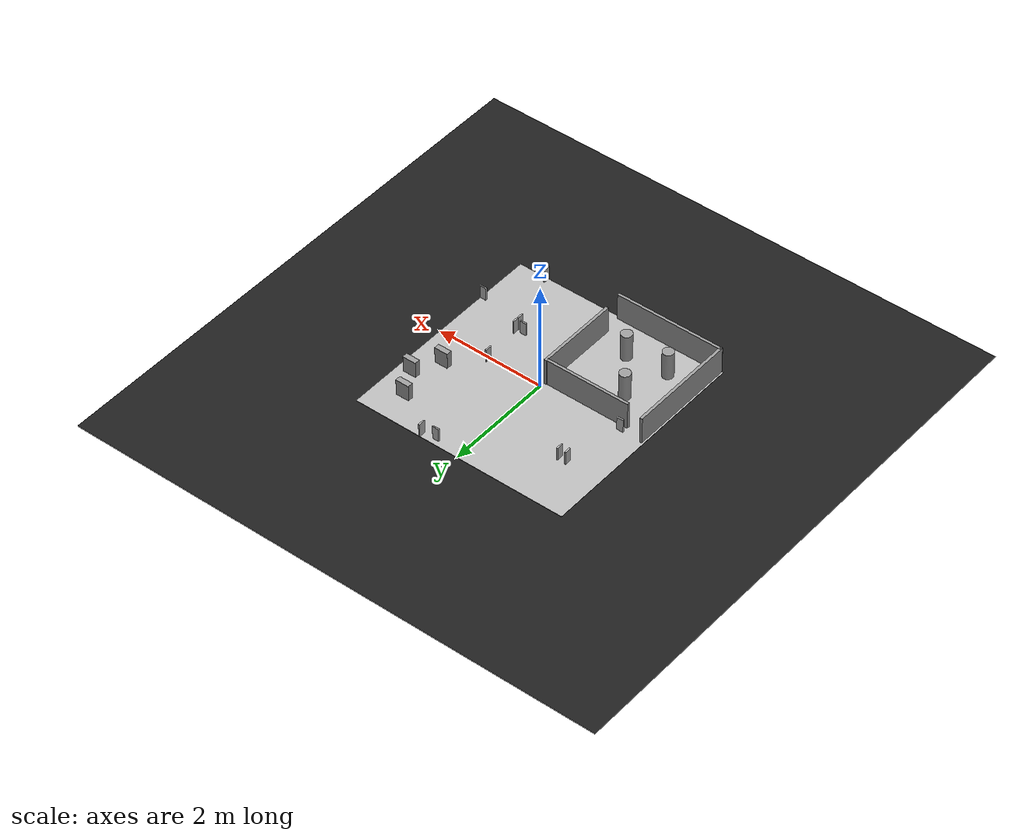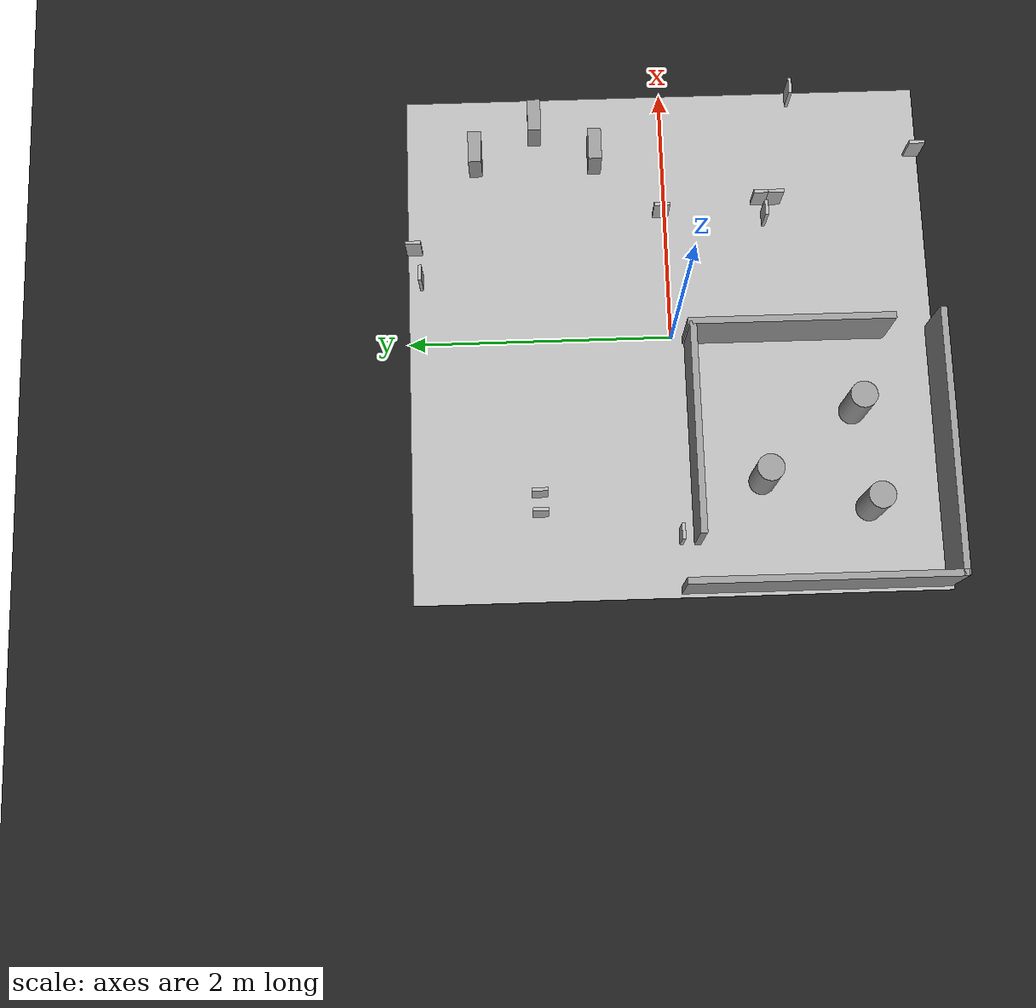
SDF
<sdf version="1.6">
 <world name="default">
  <scene>
   <ambient>0 0 0 1</ambient>
   <shadows>0</shadows>
   <grid>0</grid>
   <background>0.7 0.7 0.7 1</background>
  </scene>
  <include><uri>model://turtlebot3_autorace_2020/course</uri><pose>0 0 0 0 0 -3.14</pose></include>
  <include>
   <uri>model://turtlebot3_autorace_2020/traffic_light</uri>
   <pose>1.45 -1.95 0.125 0 -0 -1.57</pose>
  </include>
  <include>
   <uri>model://turtlebot3_autorace_2020/traffic_parking</uri>
   <pose>0.74 1.95 0.13 0 0 -1.57</pose>
  </include>
  <include>
   <uri>model://turtlebot3_autorace_2020/traffic_tunnel</uri>
   <pose>-1.544 0.00 0.125 0 0 0</pose>
  </include>
  <include>
   <uri>model://turtlebot3_autorace_2020/traffic_stop</uri>
   <pose>-1.35 1.04 0.125 0 -0 -1.57</pose>
  </include>
  <include>
   <uri>model://turtlebot3_autorace_2020/traffic_left</uri>
   <pose>1.08 -0.838 0.125 0 -0 -1.57</pose>
  </include>
  <include>
   <uri>model://turtlebot3_autorace_2020/traffic_pl_left</uri>
   <pose>0.50 1.90 0.13 0 0 0</pose>
  </include>
  <include>
   <uri>model://turtlebot3_autorace_2020/traffic_right</uri>
   <pose>1.08 -0.728 0.125 0 -0 -1.57</pose>
  </include>
  <include>
   <uri>model://turtlebot3_autorace_2020/traffic_construction</uri>
   <pose>1.0 0.04 0.125 0 -0 -1.57</pose>
  </include>
  <include>
   <uri>model://turtlebot3_autorace_2020/traffic_intersection</uri>
   <pose>1.95 -1.0 0.125 0 -0 0.0</pose>
  </include>
  <include>
   <uri>model://turtlebot3_autorace_2020/traffic_noentry</uri>
   <pose>0.95 -0.758 0.125 0 -0 0.0</pose>
  </include>
  <include>
   <uri>model://turtlebot3_autorace_2020/traffic_bar</uri>
   <pose>-1.20 1.04 0.125 0 -0 -1.57</pose>
  </include>
  <light name="sun" type="directional">
   <pose>0 0 10 0 -0 0</pose>
   <diffuse>0.8 0.8 0.8 1</diffuse>
   <specular>0.1 0.1 0.1 1</specular>
   <attenuation>
    <range>1000</range>
    <constant>0.9</constant>
    <linear>0.01</linear>
    <quadratic>0.001</quadratic>
   </attenuation>
   <direction>-0.5 0.5 -1</direction>
  </light>
  <model name="ground2">
   <pose>0 0 -0.1 0 -0 0</pose>
   <static>1</static>
   <link name="ground">
    <collision name="ground_coll"><geometry><box><size>8 8 0.01</size></box></geometry></collision>
    <visual name="ground_vis">
     <geometry><box><size>10 10 0.01</size></box></geometry>
     <material>
      <script><uri>file://media/materials/scripts/gazebo.material</uri><name>Gazebo/FlatBlack</name></script>
     </material>
    </visual>
   </link>
  </model>
  <gravity>0 0 -9.8</gravity>
  <magnetic_field>6e-06 2.3e-05 -4.2e-05</magnetic_field>
  <atmosphere type="adiabatic"/>
  <physics name="default_physics" default="0" type="ode">
   <max_step_size>0.001</max_step_size>
   <real_time_factor>1</real_time_factor>
   <real_time_update_rate>1000</real_time_update_rate>
  </physics>
  <spherical_coordinates>
   <surface_model>EARTH_WGS84</surface_model>
   <latitude_deg>0</latitude_deg>
   <longitude_deg>0</longitude_deg>
   <elevation>0</elevation>
   <heading_deg>0</heading_deg>
  </spherical_coordinates>
  <light name="user_point_light_2" type="point">
   <pose>-0.948146 0.604519 1 0 -0 0</pose>
   <diffuse>0.5 0.5 0.5 1</diffuse>
   <specular>0.1 0.1 0.1 1</specular>
   <attenuation>
    <range>20</range>
    <constant>0.5</constant>
    <linear>0.01</linear>
    <quadratic>0.001</quadratic>
   </attenuation>
   <cast_shadows>0</cast_shadows>
   <direction>0 0 -1</direction>
  </light>
  <light name="user_point_light_6" type="point">
   <pose>1.63854 1.69565 1 0 -0 0</pose>
   <diffuse>0.5 0.5 0.5 1</diffuse>
   <specular>0.1 0.1 0.1 1</specular>
   <attenuation>
    <range>20</range>
    <constant>0.5</constant>
    <linear>0.01</linear>
    <quadratic>0.001</quadratic>
   </attenuation>
   <cast_shadows>0</cast_shadows>
   <direction>0 0 -1</direction>
  </light>
  <light name="user_point_light_7" type="point">
   <pose>0.42  -3.31 1 0 -0 0</pose>
   <diffuse>0.5 0.5 0.5 1</diffuse>
   <specular>0.1 0.1 0.1 1</specular>
   <attenuation>
    <range>20</range>
    <constant>0.5</constant>
    <linear>0.01</linear>
    <quadratic>0.001</quadratic>
   </attenuation>
   <cast_shadows>0</cast_shadows>
   <direction>0 0 -1</direction>
  </light>
  <light name="user_point_light_8" type="point">
   <pose>-1.8 1.5 1 0 -0 0</pose>
   <diffuse>0.5 0.5 0.5 1</diffuse>
   <specular>0.1 0.1 0.1 1</specular>
   <attenuation>
    <range>20</range>
    <constant>0.5</constant>
    <linear>0.01</linear>
    <quadratic>0.001</quadratic>
   </attenuation>
   <cast_shadows>0</cast_shadows>
   <direction>0 0 -1</direction>
  </light>
  <model name="tunnel_wall_3">
   <link name="Wall_12">
    <pose>-0.980783 0.049883 0 0 -0 1.5708</pose>
    <visual name="Wall_12_Visual">
     <pose>0 0 0.25 0 -0 0</pose>
     <geometry><box><size>2 0.05 0.5</size></box></geometry>
     <material>
      <script><uri>file://media/materials/scripts/gazebo.material</uri><name>Gazebo/Grey</name></script>
      <ambient>1 1 1 1</ambient>
      <diffuse>0.7 0.7 0.7 1</diffuse>
      <specular>0.01 0.01 0.01 1</specular>
      <emissive>0 0 0 1</emissive>
     </material>
    </visual>
    <collision name="Wall_12_Collision">
     <pose>0 0 0.25 0 -0 0</pose>
     <geometry><box><size>2 0.05 0.5</size></box></geometry>
     <surface>
      <friction>
       <ode><mu>1</mu><mu2>1</mu2><fdir1>0 0 0</fdir1><slip1>0</slip1><slip2>0</slip2></ode>
       <torsional>
        <coefficient>1</coefficient>
        <patch_radius>0</patch_radius>
        <surface_radius>0</surface_radius>
        <use_patch_radius>1</use_patch_radius>
        <ode><slip>0</slip></ode>
       </torsional>
      </friction>
      <bounce><restitution_coefficient>0</restitution_coefficient><threshold>1e+06</threshold></bounce>
      <contact>
       <collide_without_contact>0</collide_without_contact>
       <collide_without_contact_bitmask>1</collide_without_contact_bitmask>
       <collide_bitmask>1</collide_bitmask>
       <ode>
        <soft_cfm>0</soft_cfm>
        <soft_erp>0.2</soft_erp>
        <kp>1e+13</kp>
        <kd>1</kd>
        <max_vel>0.01</max_vel>
        <min_depth>0</min_depth>
       </ode>
       <bullet>
        <split_impulse>1</split_impulse>
        <split_impulse_penetration_threshold>-0.01</split_impulse_penetration_threshold>
        <soft_cfm>0</soft_cfm>
        <soft_erp>0.2</soft_erp>
        <kp>1e+13</kp>
        <kd>1</kd>
       </bullet>
      </contact>
     </surface>
    </collision>
   </link>
   <link name="Wall_14">
    <pose>0 -0.935438 0 0 -0 0</pose>
    <visual name="Wall_14_Visual">
     <pose>0 0 0.25 0 -0 0</pose>
     <geometry><box><size>2.00003 0.05 0.5</size></box></geometry>
     <material>
      <script><uri>file://media/materials/scripts/gazebo.material</uri><name>Gazebo/Grey</name></script>
      <ambient>1 1 1 1</ambient>
      <diffuse>0.7 0.7 0.7 1</diffuse>
      <specular>0.01 0.01 0.01 1</specular>
      <emissive>0 0 0 1</emissive>
     </material>
    </visual>
    <collision name="Wall_14_Collision">
     <pose>0 0 0.25 0 -0 0</pose>
     <geometry><box><size>2.00003 0.05 0.5</size></box></geometry>
     <surface>
      <friction>
       <ode><mu>1</mu><mu2>1</mu2><fdir1>0 0 0</fdir1><slip1>0</slip1><slip2>0</slip2></ode>
       <torsional>
        <coefficient>1</coefficient>
        <patch_radius>0</patch_radius>
        <surface_radius>0</surface_radius>
        <use_patch_radius>1</use_patch_radius>
        <ode><slip>0</slip></ode>
       </torsional>
      </friction>
      <bounce><restitution_coefficient>0</restitution_coefficient><threshold>1e+06</threshold></bounce>
      <contact>
       <collide_without_contact>0</collide_without_contact>
       <collide_without_contact_bitmask>1</collide_without_contact_bitmask>
       <collide_bitmask>1</collide_bitmask>
       <ode>
        <soft_cfm>0</soft_cfm>
        <soft_erp>0.2</soft_erp>
        <kp>1e+13</kp>
        <kd>1</kd>
        <max_vel>0.01</max_vel>
        <min_depth>0</min_depth>
       </ode>
       <bullet>
        <split_impulse>1</split_impulse>
        <split_impulse_penetration_threshold>-0.01</split_impulse_penetration_threshold>
        <soft_cfm>0</soft_cfm>
        <soft_erp>0.2</soft_erp>
        <kp>1e+13</kp>
        <kd>1</kd>
       </bullet>
      </contact>
     </surface>
    </collision>
   </link>
   <link name="Wall_16">
    <pose>0.943396 0.183669 0 0 -0 1.5708</pose>
    <inertial>
     <inertia><ixx>nan</ixx><ixy>0</ixy><ixz>0</ixz><iyy>nan</iyy><iyz>0</iyz><izz>nan</izz></inertia>
     <mass>0</mass>
    </inertial>
    <visual name="Wall_16_Visual">
     <pose>0 0 0.25 0 -0 0</pose>
     <geometry><box><size>1.53699 0.05 0.5</size></box></geometry>
     <material>
      <script><uri>file://media/materials/scripts/gazebo.material</uri><name>Gazebo/Grey</name></script>
      <ambient>1 1 1 1</ambient>
      <diffuse>0.7 0.7 0.7 1</diffuse>
      <specular>0.01 0.01 0.01 1</specular>
      <emissive>0 0 0 1</emissive>
     </material>
    </visual>
    <collision name="Wall_16_Collision">
     <pose>0 0 0.25 0 -0 0</pose>
     <geometry><box><size>1.53699 0.05 0.5</size></box></geometry>
     <surface>
      <friction>
       <ode><mu>1</mu><mu2>1</mu2><fdir1>0 0 0</fdir1><slip1>0</slip1><slip2>0</slip2></ode>
       <torsional>
        <coefficient>1</coefficient>
        <patch_radius>0</patch_radius>
        <surface_radius>0</surface_radius>
        <use_patch_radius>1</use_patch_radius>
        <ode><slip>0</slip></ode>
       </torsional>
      </friction>
      <bounce><restitution_coefficient>0</restitution_coefficient><threshold>1e+06</threshold></bounce>
      <contact>
       <collide_without_contact>0</collide_without_contact>
       <collide_without_contact_bitmask>1</collide_without_contact_bitmask>
       <collide_bitmask>1</collide_bitmask>
       <ode>
        <soft_cfm>0</soft_cfm>
        <soft_erp>0.2</soft_erp>
        <kp>1e+13</kp>
        <kd>1</kd>
        <max_vel>0.01</max_vel>
        <min_depth>0</min_depth>
       </ode>
       <bullet>
        <split_impulse>1</split_impulse>
        <split_impulse_penetration_threshold>-0.01</split_impulse_penetration_threshold>
        <soft_cfm>0</soft_cfm>
        <soft_erp>0.2</soft_erp>
        <kp>1e+13</kp>
        <kd>1</kd>
       </bullet>
      </contact>
     </surface>
    </collision>
   </link>
   <link name="Wall_17">
    <pose>0.15 0.915 0 0 -0 3.14159</pose>
    <visual name="Wall_17_Visual">
     <pose>0 0 0.25 0 -0 0</pose>
     <geometry><box><size>1.58 0.05 0.5</size></box></geometry>
     <material>
      <script><uri>file://media/materials/scripts/gazebo.material</uri><name>Gazebo/Grey</name></script>
      <ambient>1 1 1 1</ambient>
      <diffuse>0.7 0.7 0.7 1</diffuse>
      <specular>0.01 0.01 0.01 1</specular>
      <emissive>0 0 0 1</emissive>
     </material>
    </visual>
    <collision name="Wall_17_Collision">
     <pose>0 0 0.25 0 -0 0</pose>
     <geometry><box><size>1.58 0.05 0.5</size></box></geometry>
     <surface>
      <friction>
       <ode><mu>1</mu><mu2>1</mu2><fdir1>0 0 0</fdir1><slip1>0</slip1><slip2>0</slip2></ode>
       <torsional>
        <coefficient>1</coefficient>
        <patch_radius>0</patch_radius>
        <surface_radius>0</surface_radius>
        <use_patch_radius>1</use_patch_radius>
        <ode><slip>0</slip></ode>
       </torsional>
      </friction>
      <bounce><restitution_coefficient>0</restitution_coefficient><threshold>1e+06</threshold></bounce>
      <contact>
       <collide_without_contact>0</collide_without_contact>
       <collide_without_contact_bitmask>1</collide_without_contact_bitmask>
       <collide_bitmask>1</collide_bitmask>
       <ode>
        <soft_cfm>0</soft_cfm>
        <soft_erp>0.2</soft_erp>
        <kp>1e+13</kp>
        <kd>1</kd>
        <max_vel>0.01</max_vel>
        <min_depth>0</min_depth>
       </ode>
       <bullet>
        <split_impulse>1</split_impulse>
        <split_impulse_penetration_threshold>-0.01</split_impulse_penetration_threshold>
        <soft_cfm>0</soft_cfm>
        <soft_erp>0.2</soft_erp>
        <kp>1e+13</kp>
        <kd>1</kd>
       </bullet>
      </contact>
     </surface>
    </collision>
   </link>
   <static>1</static>
   <pose>-0.964699 -1.03574 0 0 -0 0</pose>
  </model>
  <model name="tunnel_occ_2_1">
   <link name="link_0_clone_clone">
    <pose>0.42322 -0.212034 0.25 0 -0 0</pose>
    <inertial>
     <mass>0.0416663</mass>
     <inertia>
      <ixx>0.00098188</ixx>
      <ixy>0</ixy>
      <ixz>0</ixz>
      <iyy>0.00098188</iyy>
      <iyz>0</iyz>
      <izz>0.00046751</izz>
     </inertia>
    </inertial>
    <visual name="visual">
     <geometry><cylinder><radius>0.1</radius><length>0.5</length></cylinder></geometry>
     <material>
      <lighting>1</lighting>
      <script><uri>file://media/materials/scripts/gazebo.material</uri><name>Gazebo/Grey</name></script>
      <ambient>0.3 0.3 0.3 1</ambient>
      <diffuse>0.7 0.7 0.7 1</diffuse>
      <specular>0.01 0.01 0.01 1</specular>
      <emissive>0 0 0 1</emissive>
      <shader type="pixel"><normal_map>__default__</normal_map></shader>
     </material>
    </visual>
    <collision name="collision">
     <geometry><cylinder><radius>0.1</radius><length>0.46418</length></cylinder></geometry>
     <surface>
      <friction>
       <ode><mu>1</mu><mu2>1</mu2><fdir1>0 0 0</fdir1><slip1>0</slip1><slip2>0</slip2></ode>
       <torsional>
        <coefficient>1</coefficient>
        <patch_radius>0</patch_radius>
        <surface_radius>0</surface_radius>
        <use_patch_radius>1</use_patch_radius>
        <ode><slip>0</slip></ode>
       </torsional>
      </friction>
      <bounce><restitution_coefficient>0</restitution_coefficient><threshold>1e+06</threshold></bounce>
      <contact>
       <collide_without_contact>0</collide_without_contact>
       <collide_without_contact_bitmask>1</collide_without_contact_bitmask>
       <collide_bitmask>1</collide_bitmask>
       <ode>
        <soft_cfm>0</soft_cfm>
        <soft_erp>0.2</soft_erp>
        <kp>1e+13</kp>
        <kd>1</kd>
        <max_vel>0.01</max_vel>
        <min_depth>0</min_depth>
       </ode>
       <bullet>
        <split_impulse>1</split_impulse>
        <split_impulse_penetration_threshold>-0.01</split_impulse_penetration_threshold>
        <soft_cfm>0</soft_cfm>
        <soft_erp>0.2</soft_erp>
        <kp>1e+13</kp>
        <kd>1</kd>
       </bullet>
      </contact>
     </surface>
    </collision>
   </link>
   <link name="link_0_clone_clone_clone">
    <pose>-0.323729 -0.287563 0.25 0 -0 0</pose>
    <inertial>
     <mass>0.0416663</mass>
     <inertia>
      <ixx>0.00098188</ixx>
      <ixy>0</ixy>
      <ixz>0</ixz>
      <iyy>0.00098188</iyy>
      <iyz>0</iyz>
      <izz>0.00046751</izz>
     </inertia>
    </inertial>
    <visual name="visual">
     <geometry><cylinder><radius>0.1</radius><length>0.5</length></cylinder></geometry>
     <material>
      <lighting>1</lighting>
      <script><uri>file://media/materials/scripts/gazebo.material</uri><name>Gazebo/Grey</name></script>
      <ambient>0.3 0.3 0.3 1</ambient>
      <diffuse>0.7 0.7 0.7 1</diffuse>
      <specular>0.01 0.01 0.01 1</specular>
      <emissive>0 0 0 1</emissive>
      <shader type="pixel"><normal_map>__default__</normal_map></shader>
     </material>
    </visual>
    <collision name="collision">
     <geometry><cylinder><radius>0.1</radius><length>0.46418</length></cylinder></geometry>
     <surface>
      <friction>
       <ode><mu>1</mu><mu2>1</mu2><fdir1>0 0 0</fdir1><slip1>0</slip1><slip2>0</slip2></ode>
       <torsional>
        <coefficient>1</coefficient>
        <patch_radius>0</patch_radius>
        <surface_radius>0</surface_radius>
        <use_patch_radius>1</use_patch_radius>
        <ode><slip>0</slip></ode>
       </torsional>
      </friction>
      <bounce><restitution_coefficient>0</restitution_coefficient><threshold>1e+06</threshold></bounce>
      <contact>
       <collide_without_contact>0</collide_without_contact>
       <collide_without_contact_bitmask>1</collide_without_contact_bitmask>
       <collide_bitmask>1</collide_bitmask>
       <ode>
        <soft_cfm>0</soft_cfm>
        <soft_erp>0.2</soft_erp>
        <kp>1e+13</kp>
        <kd>1</kd>
        <max_vel>0.01</max_vel>
        <min_depth>0</min_depth>
       </ode>
       <bullet>
        <split_impulse>1</split_impulse>
        <split_impulse_penetration_threshold>-0.01</split_impulse_penetration_threshold>
        <soft_cfm>0</soft_cfm>
        <soft_erp>0.2</soft_erp>
        <kp>1e+13</kp>
        <kd>1</kd>
       </bullet>
      </contact>
     </surface>
    </collision>
   </link>
   <link name="link_0_clone_clone_clone_clone">
    <pose>-0.099492 0.499594 0.25 0 -0 0</pose>
    <inertial>
     <mass>0.0416663</mass>
     <inertia>
      <ixx>0.00098188</ixx>
      <ixy>0</ixy>
      <ixz>0</ixz>
      <iyy>0.00098188</iyy>
      <iyz>0</iyz>
      <izz>0.00046751</izz>
     </inertia>
    </inertial>
    <visual name="visual">
     <geometry><cylinder><radius>0.1</radius><length>0.5</length></cylinder></geometry>
     <material>
      <lighting>1</lighting>
      <script><uri>file://media/materials/scripts/gazebo.material</uri><name>Gazebo/Grey</name></script>
      <ambient>0.3 0.3 0.3 1</ambient>
      <diffuse>0.7 0.7 0.7 1</diffuse>
      <specular>0.01 0.01 0.01 1</specular>
      <emissive>0 0 0 1</emissive>
      <shader type="pixel"><normal_map>__default__</normal_map></shader>
     </material>
    </visual>
    <collision name="collision">
     <geometry><cylinder><radius>0.1</radius><length>0.46418</length></cylinder></geometry>
     <surface>
      <friction>
       <ode><mu>1</mu><mu2>1</mu2><fdir1>0 0 0</fdir1><slip1>0</slip1><slip2>0</slip2></ode>
       <torsional>
        <coefficient>1</coefficient>
        <patch_radius>0</patch_radius>
        <surface_radius>0</surface_radius>
        <use_patch_radius>1</use_patch_radius>
        <ode><slip>0</slip></ode>
       </torsional>
      </friction>
      <bounce><restitution_coefficient>0</restitution_coefficient><threshold>1e+06</threshold></bounce>
      <contact>
       <collide_without_contact>0</collide_without_contact>
       <collide_without_contact_bitmask>1</collide_without_contact_bitmask>
       <collide_bitmask>1</collide_bitmask>
       <ode>
        <soft_cfm>0</soft_cfm>
        <soft_erp>0.2</soft_erp>
        <kp>1e+13</kp>
        <kd>1</kd>
        <max_vel>0.01</max_vel>
        <min_depth>0</min_depth>
       </ode>
       <bullet>
        <split_impulse>1</split_impulse>
        <split_impulse_penetration_threshold>-0.01</split_impulse_penetration_threshold>
        <soft_cfm>0</soft_cfm>
        <soft_erp>0.2</soft_erp>
        <kp>1e+13</kp>
        <kd>1</kd>
       </bullet>
      </contact>
     </surface>
    </collision>
   </link>
   <static>1</static>
   <pose>-1.04145 -1.12671 0 0 -0 0</pose>
  </model>
  <model name="barrier_1">
   <link name="link">
    <inertial>
     <mass>1</mass>
     <inertia>
      <ixx>0.166667</ixx>
      <ixy>0</ixy>
      <ixz>0</ixz>
      <iyy>0.166667</iyy>
      <iyz>0</iyz>
      <izz>0.166667</izz>
     </inertia>
    </inertial>
    <visual name="visual">
     <geometry><box><size>0.25 0.1 0.3</size></box></geometry>
     <material>
      <script><name>Gazebo/Grey</name><uri>file://media/materials/scripts/gazebo.material</uri></script>
      <shader type="pixel"><normal_map>__default__</normal_map></shader>
      <ambient>0.3 0.3 0.3 1</ambient>
      <diffuse>0.7 0.7 0.7 1</diffuse>
      <specular>0.01 0.01 0.01 1</specular>
      <emissive>0 0 0 1</emissive>
     </material>
    </visual>
    <collision name="collision">
     <geometry><box><size>0.25 0.1 0.3</size></box></geometry>
     <surface>
      <friction>
       <ode><mu>1</mu><mu2>1</mu2><fdir1>0 0 0</fdir1><slip1>0</slip1><slip2>0</slip2></ode>
       <torsional>
        <coefficient>1</coefficient>
        <patch_radius>0</patch_radius>
        <surface_radius>0</surface_radius>
        <use_patch_radius>1</use_patch_radius>
        <ode><slip>0</slip></ode>
       </torsional>
      </friction>
      <bounce><restitution_coefficient>0</restitution_coefficient><threshold>1e+06</threshold></bounce>
      <contact>
       <collide_without_contact>0</collide_without_contact>
       <collide_without_contact_bitmask>1</collide_without_contact_bitmask>
       <collide_bitmask>1</collide_bitmask>
       <ode>
        <soft_cfm>0</soft_cfm>
        <soft_erp>0.2</soft_erp>
        <kp>1e+13</kp>
        <kd>1</kd>
        <max_vel>0.01</max_vel>
        <min_depth>0</min_depth>
       </ode>
       <bullet>
        <split_impulse>1</split_impulse>
        <split_impulse_penetration_threshold>-0.01</split_impulse_penetration_threshold>
        <soft_cfm>0</soft_cfm>
        <soft_erp>0.2</soft_erp>
        <kp>1e+13</kp>
        <kd>1</kd>
       </bullet>
      </contact>
     </surface>
    </collision>
   </link>
   <static>0</static>
   <pose>1.49 0.54 0.15 0 -0 0</pose>
  </model>
  <model name="barrier_2">
   <link name="link">
    <inertial>
     <mass>1</mass>
     <inertia>
      <ixx>0.166667</ixx>
      <ixy>0</ixy>
      <ixz>0</ixz>
      <iyy>0.166667</iyy>
      <iyz>0</iyz>
      <izz>0.166667</izz>
     </inertia>
    </inertial>
    <visual name="visual">
     <geometry><box><size>0.25 0.1 0.3</size></box></geometry>
     <material>
      <script><name>Gazebo/Grey</name><uri>file://media/materials/scripts/gazebo.material</uri></script>
      <shader type="pixel"><normal_map>__default__</normal_map></shader>
      <ambient>0.3 0.3 0.3 1</ambient>
      <diffuse>0.7 0.7 0.7 1</diffuse>
      <specular>0.01 0.01 0.01 1</specular>
      <emissive>0 0 0 1</emissive>
     </material>
    </visual>
    <collision name="collision">
     <geometry><box><size>0.25 0.1 0.3</size></box></geometry>
     <surface>
      <friction>
       <ode><mu>1</mu><mu2>1</mu2><fdir1>0 0 0</fdir1><slip1>0</slip1><slip2>0</slip2></ode>
       <torsional>
        <coefficient>1</coefficient>
        <patch_radius>0</patch_radius>
        <surface_radius>0</surface_radius>
        <use_patch_radius>1</use_patch_radius>
        <ode><slip>0</slip></ode>
       </torsional>
      </friction>
      <bounce><restitution_coefficient>0</restitution_coefficient><threshold>1e+06</threshold></bounce>
      <contact>
       <collide_without_contact>0</collide_without_contact>
       <collide_without_contact_bitmask>1</collide_without_contact_bitmask>
       <collide_bitmask>1</collide_bitmask>
       <ode>
        <soft_cfm>0</soft_cfm>
        <soft_erp>0.2</soft_erp>
        <kp>1e+13</kp>
        <kd>1</kd>
        <max_vel>0.01</max_vel>
        <min_depth>0</min_depth>
       </ode>
       <bullet>
        <split_impulse>1</split_impulse>
        <split_impulse_penetration_threshold>-0.01</split_impulse_penetration_threshold>
        <soft_cfm>0</soft_cfm>
        <soft_erp>0.2</soft_erp>
        <kp>1e+13</kp>
        <kd>1</kd>
       </bullet>
      </contact>
     </surface>
    </collision>
   </link>
   <static>0</static>
   <pose>1.74 1 0.15 0 -0 0</pose>
  </model>
  <model name="barrier_3">
   <link name="link">
    <inertial>
     <mass>1</mass>
     <inertia>
      <ixx>0.166667</ixx>
      <ixy>0</ixy>
      <ixz>0</ixz>
      <iyy>0.166667</iyy>
      <iyz>0</iyz>
      <izz>0.166667</izz>
     </inertia>
    </inertial>
    <visual name="visual">
     <geometry><box><size>0.25 0.1 0.3</size></box></geometry>
     <material>
      <script><name>Gazebo/Grey</name><uri>file://media/materials/scripts/gazebo.material</uri></script>
      <shader type="pixel"><normal_map>__default__</normal_map></shader>
      <ambient>0.3 0.3 0.3 1</ambient>
      <diffuse>0.7 0.7 0.7 1</diffuse>
      <specular>0.01 0.01 0.01 1</specular>
      <emissive>0 0 0 1</emissive>
     </material>
    </visual>
    <collision name="collision">
     <geometry><box><size>0.25 0.1 0.3</size></box></geometry>
     <surface>
      <friction>
       <ode><mu>1</mu><mu2>1</mu2><fdir1>0 0 0</fdir1><slip1>0</slip1><slip2>0</slip2></ode>
       <torsional>
        <coefficient>1</coefficient>
        <patch_radius>0</patch_radius>
        <surface_radius>0</surface_radius>
        <use_patch_radius>1</use_patch_radius>
        <ode><slip>0</slip></ode>
       </torsional>
      </friction>
      <bounce><restitution_coefficient>0</restitution_coefficient><threshold>1e+06</threshold></bounce>
      <contact>
       <collide_without_contact>0</collide_without_contact>
       <collide_without_contact_bitmask>1</collide_without_contact_bitmask>
       <collide_bitmask>1</collide_bitmask>
       <ode>
        <soft_cfm>0</soft_cfm>
        <soft_erp>0.2</soft_erp>
        <kp>1e+13</kp>
        <kd>1</kd>
        <max_vel>0.01</max_vel>
        <min_depth>0</min_depth>
       </ode>
       <bullet>
        <split_impulse>1</split_impulse>
        <split_impulse_penetration_threshold>-0.01</split_impulse_penetration_threshold>
        <soft_cfm>0</soft_cfm>
        <soft_erp>0.2</soft_erp>
        <kp>1e+13</kp>
        <kd>1</kd>
       </bullet>
      </contact>
     </surface>
    </collision>
   </link>
   <static>0</static>
   <pose>1.49 1.464 0.15 0 -0 0</pose>
  </model>
 </world>
</sdf>

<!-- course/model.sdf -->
<sdf version="1.6">
  <model name="course">
    <static>true</static>
    <link name="course_link">
      <collision name="course_collision">
        <geometry>
          <plane>
            <normal>0 0 1</normal>
            <size>4 4</size>
          </plane>
        </geometry>
        <surface>
          <friction>
            <ode>
              <mu>100</mu>
              <mu2>50</mu2>
            </ode>
          </friction>
        </surface>
      </collision>
      <visual name="course_visual">
        <cast_shadows>false</cast_shadows>
        <geometry>
	        <plane>
            <normal>0 0 1</normal>
            <size>4 4</size>
          </plane>
        </geometry>
	      <material>
          <script>
            <uri>model://turtlebot3_autorace/course/materials/scripts</uri>
            <uri>model://turtlebot3_autorace/course/materials/textures</uri>
            <name>course</name>
          </script>
        </material>
      </visual>
    </link>
  </model>
</sdf>

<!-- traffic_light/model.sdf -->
<sdf version="1.6">
  <model name="traffic_light">
    <static>true</static>
    <link name="box">
      <pose>0 0 0 0 0 0</pose>
      <collision name="collision">
        <geometry>
          <box>
            <size>0.12 0.025 0.25</size>
          </box>
        </geometry>
      </collision>
      <visual name="visual">
        <geometry>
          <box>
            <size>0.12 0.025 0.25</size>
          </box>
        </geometry>
        <material>
          <script>
            <uri>model://turtlebot3_autorace_2020/traffic_light/materials/scripts</uri>
            <uri>model://turtlebot3_autorace_2020/traffic_light/materials/textures</uri>
            <name>traffic_light</name>
          </script>
        </material>
      </visual>
    </link>
  </model>
</sdf>

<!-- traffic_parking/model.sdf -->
<sdf version="1.6">
  <model name="traffic_parking">
    <static>true</static>
    <link name="box">
      <pose>0 0 0 0 0 0</pose>
      <collision name="collision">
        <geometry>
          <box>
            <size>0.12 0.025 0.25</size>
          </box>
        </geometry>
      </collision>
      <visual name="visual">
        <geometry>
          <box>
            <size>0.12 0.025 0.25</size>
          </box>
        </geometry>
        <material>
          <script>
            <uri>model://turtlebot3_autorace/traffic_parking/materials/scripts</uri>
            <uri>model://turtlebot3_autorace/traffic_parking/materials/textures</uri>
            <name>traffic_parking</name>
          </script>
        </material>
      </visual>
    </link>
  </model>
</sdf>

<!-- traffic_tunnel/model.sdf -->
<sdf version="1.6">
  <model name="traffic_tunnel">
    <pose>0 0 0.125 0 0 0</pose>
    <link name="box">
      <pose>0 0 0 0 0 0</pose>
      <collision name="collision">
        <geometry>
          <box>
            <size>0.12 0.025 0.25</size>
          </box>
        </geometry>
      </collision>
      <visual name="visual">
        <geometry>
          <box>
            <size>0.12 0.025 0.25</size>
          </box>
        </geometry>
        <material>
          <script>
            <uri>model://traffic_tunnel/materials/scripts</uri>
            <uri>model://traffic_tunnel/materials/textures</uri>
            <name>traffic_tunnel</name>
          </script>
        </material>
      </visual>
    </link>
  </model>
</sdf>

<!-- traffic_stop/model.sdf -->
<sdf version="1.6">
  <model name="traffic_stop">
    <static>true</static>
    <link name="box">
      <pose>0 0 0 0 0 0</pose>
      <collision name="collision">
        <geometry>
          <box>
            <size>0.12 0.025 0.25</size>
          </box>
        </geometry>
      </collision>
      <visual name="visual">
        <geometry>
          <box>
            <size>0.12 0.025 0.25</size>
          </box>
        </geometry>
        <material>
          <script>
            <uri>model://turtlebot3_autorace/traffic_stop/materials/scripts</uri>
            <uri>model://turtlebot3_autorace/traffic_stop/materials/textures</uri>
            <name>traffic_stop</name>
          </script>
        </material>
      </visual>
    </link>
  </model>
</sdf>

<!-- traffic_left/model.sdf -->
<sdf version="1.6">
  <model name="traffic_left">
    <static>true</static>
    <link name="box">
      <pose>0 0 0 0 0 0</pose>
      <collision name="collision">
        <geometry>
          <box>
            <size>0.12 0.025 0.25</size>
          </box>
        </geometry>
      </collision>
      <visual name="visual">
        <geometry>
          <box>
            <size>0.12 0.025 0.25</size>
          </box>
        </geometry>
        <material>
          <script>
            <uri>model://turtlebot3_autorace_2020/traffic_left/materials/scripts</uri>
            <uri>model://turtlebot3_autorace_2020/traffic_left/materials/textures</uri>
            <name>traffic_left</name>
          </script>
        </material>
      </visual>
    </link>
  </model>
</sdf>

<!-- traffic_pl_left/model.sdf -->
<sdf version="1.6">
  <model name="traffic_pl_left">
    <static>true</static>
    <link name="box">
      <pose>0 0 0 0 0 0</pose>
      <collision name="collision">
        <geometry>
          <box>
            <size>0.12 0.025 0.25</size>
          </box>
        </geometry>
      </collision>
      <visual name="visual">
        <geometry>
          <box>
            <size>0.12 0.025 0.25</size>
          </box>
        </geometry>
        <material>
          <script>
            <uri>model://turtlebot3_autorace_2020/traffic_pl_left/materials/scripts</uri>
            <uri>model://turtlebot3_autorace_2020/traffic_pl_left/materials/textures</uri>
            <name>traffic_pl_left</name>
          </script>
        </material>
      </visual>
    </link>
  </model>
</sdf>

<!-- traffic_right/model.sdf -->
<sdf version="1.6">
  <model name="traffic_right">
    <static>true</static>
    <link name="box">
      <pose>0 0 0 0 0 0</pose>
      <collision name="collision">
        <geometry>
          <box>
            <size>0.12 0.025 0.25</size>
          </box>
        </geometry>
      </collision>
      <visual name="visual">
        <geometry>
          <box>
            <size>0.12 0.025 0.25</size>
          </box>
        </geometry>
        <material>
          <script>
            <uri>model://turtlebot3_autorace_2020/traffic_right/materials/scripts</uri>
            <uri>model://turtlebot3_autorace_2020/traffic_right/materials/textures</uri>
            <name>traffic_right</name>
          </script>
        </material>
      </visual>
    </link>
  </model>
</sdf>

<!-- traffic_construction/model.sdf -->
<sdf version="1.6">
  <model name="traffic_construction">
    <static>true</static>
    <link name="box">
      <pose>0 0 0 0 0 0</pose>
      <collision name="collision">
        <geometry>
          <box>
            <size>0.12 0.025 0.25</size>
          </box>
        </geometry>
      </collision>
      <visual name="visual">
        <geometry>
          <box>
            <size>0.12 0.025 0.25</size>
          </box>
        </geometry>
        <material>
          <script>
            <uri>model://turtlebot3_autorace_2020/traffic_construction/materials/scripts</uri>
            <uri>model://turtlebot3_autorace_2020/traffic_construction/materials/textures</uri>
            <name>traffic_construction</name>
          </script>
        </material>
      </visual>
    </link>
  </model>
</sdf>

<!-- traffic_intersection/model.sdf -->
<sdf version="1.6">
  <model name="traffic_intersection">
    <static>true</static>
    <link name="box">
      <pose>0 0 0 0 0 0</pose>
      <collision name="collision">
        <geometry>
          <box>
            <size>0.12 0.025 0.25</size>
          </box>
        </geometry>
      </collision>
      <visual name="visual">
        <geometry>
          <box>
            <size>0.12 0.025 0.25</size>
          </box>
        </geometry>
        <material>
          <script>
            <uri>model://turtlebot3_autorace_2020/traffic_intersection/materials/scripts</uri>
            <uri>model://turtlebot3_autorace_2020/traffic_intersection/materials/textures</uri>
            <name>traffic_intersection</name>
          </script>
        </material>
      </visual>
    </link>
  </model>
</sdf>

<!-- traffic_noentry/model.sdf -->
<sdf version="1.6">
  <model name="traffic_noentry">
    <static>true</static>
    <link name="box">
      <pose>0 0 0 0 0 0</pose>
      <collision name="collision">
        <geometry>
          <box>
            <size>0.12 0.025 0.25</size>
          </box>
        </geometry>
      </collision>
      <visual name="visual">
        <geometry>
          <box>
            <size>0.12 0.025 0.25</size>
          </box>
        </geometry>
        <material>
          <script>
            <uri>model://turtlebot3_autorace_2020/traffic_noentry/materials/scripts</uri>
            <uri>model://turtlebot3_autorace_2020/traffic_noentry/materials/textures</uri>
            <name>traffic_noentry</name>
          </script>
        </material>
      </visual>
    </link>
  </model>
</sdf>

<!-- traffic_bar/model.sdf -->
<sdf version="1.6">
  <model name="traffic_bar">
    <pose>0 0 0.125 0 0 0</pose>
    <link name="box">
      <pose>0 0 0 0 0 0</pose>
      <collision name="collision">
        <geometry>
          <box>
            <size>0.12 0.025 0.25</size>
          </box>
        </geometry>
      </collision>
      <visual name="visual">
        <geometry>
          <box>
            <size>0.12 0.025 0.25</size>
          </box>
        </geometry>
        <material>
          <script>
            <uri>model://traffic_bar/materials/scripts</uri>
            <uri>model://traffic_bar/materials/textures</uri>
            <name>traffic_bar</name>
          </script>
        </material>
      </visual>
    </link>
  </model>
</sdf>
